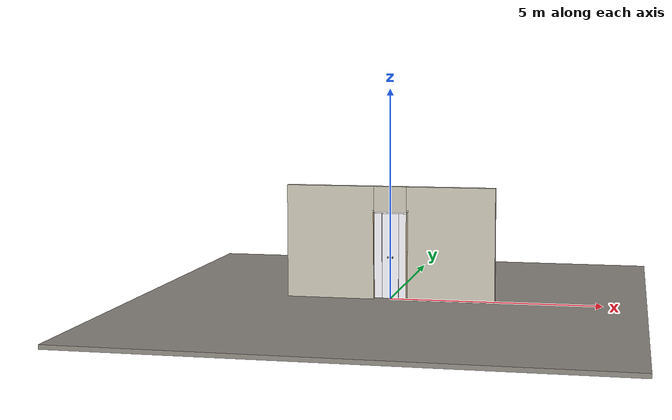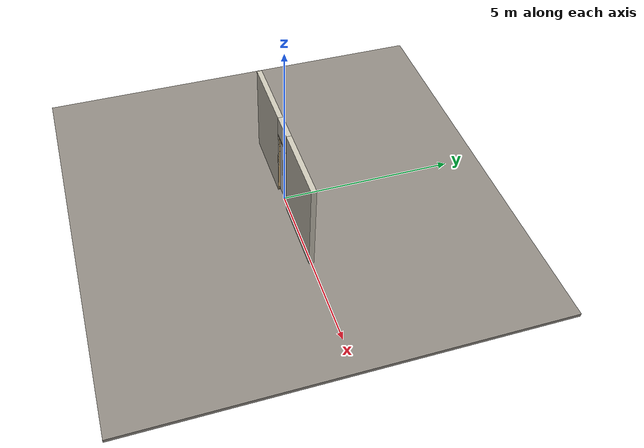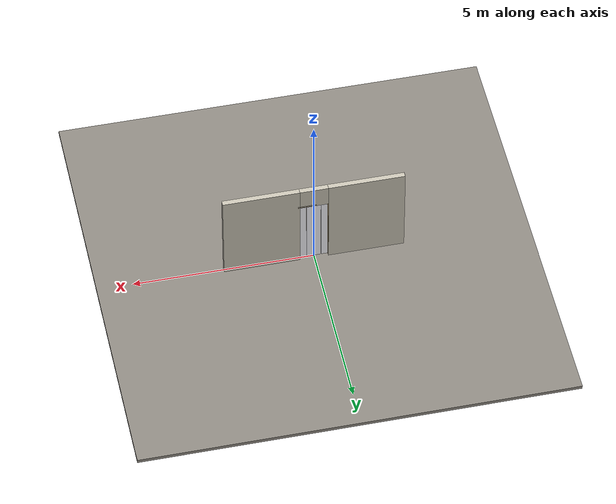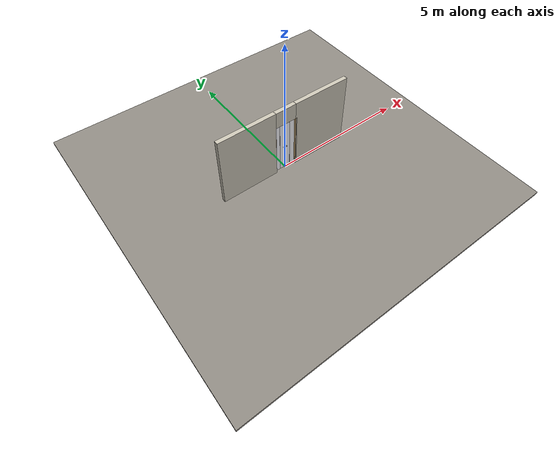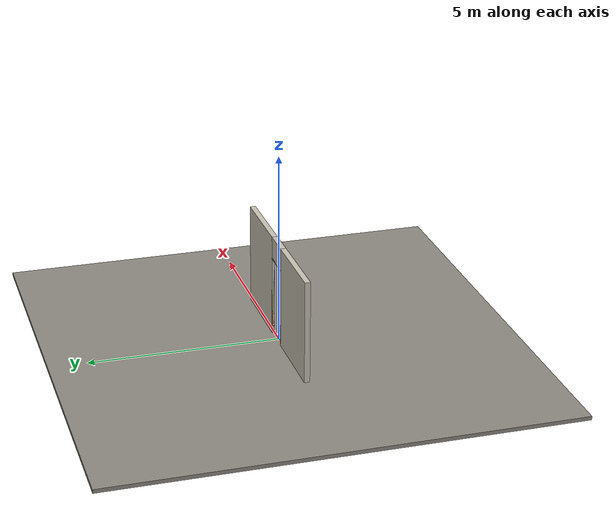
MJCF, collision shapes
<?xml version="1.0" ?>
<mujoco model="db0078_bifold_minimal">
  <compiler angle="radian" meshdir="../../hardware" texturedir="../../textures" autolimits="true" inertiafromgeom="false"/>
  <option timestep="0.002" integrator="implicitfast" cone="elliptic" impratio="10" noslip_iterations="3">
    <flag multiccd="enable"/>
  </option>
  <size memory="16M"/>
  <default>
    <geom condim="4" solref="0.005 1" solimp="0.95 0.99 0.001"/>
    <joint solreflimit="0.005 1" solimplimit="0.95 0.99 0.001"/>
    <tendon solreflimit="0.005 1"/>
    <equality solref="0.002 1"/>
  </default>
  <visual>
    <headlight ambient="0.4 0.4 0.4" diffuse="0.7 0.7 0.7" specular="0.2 0.2 0.2"/>
    <quality shadowsize="4096"/>
    <map znear="0.01" zfar="60"/>
  </visual>
  <asset>
    <mesh name="knob_13f7a2a65f" file="knob_13f7a2a65f.obj"/>
    <material name="mat_floor" rgba="0.55 0.53 0.5 1" specular="0.2" shininess="0.15" reflectance="0"/>
    <material name="mat_wall" rgba="0.78 0.76 0.7 1" specular="0.2" shininess="0.1" reflectance="0"/>
    <material name="mat_frame" rgba="0.82 0.7 0.5 1" specular="0.2" shininess="0.45" reflectance="0"/>
    <material name="mat_track" rgba="0.8 0.81 0.83 1" specular="0.8" shininess="0.6" reflectance="0.4"/>
    <material name="mat_hinge" rgba="0.65 0.66 0.68 1" specular="0.74" shininess="0.5" reflectance="0.36"/>
    <material name="mat_panel_0_0" rgba="0.95 0.95 0.97 1" specular="0.8" shininess="1" reflectance="0.4"/>
    <material name="mat_glass_leaf" rgba="0.95 0.95 0.97 1" specular="0.8" shininess="1" reflectance="0.4"/>
    <material name="mat_patch" rgba="0.75 0.76 0.77 1" specular="0.8" shininess="0.65" reflectance="0.4"/>
    <material name="mat_panel_0_1" rgba="0.95 0.95 0.97 1" specular="0.8" shininess="1" reflectance="0.4"/>
    <material name="mat_op_nickel_satin" rgba="0.72 0.7 0.66 1" specular="0.8" shininess="0.65" reflectance="0.4"/>
    <material name="mat_panel_1_0" rgba="0.95 0.95 0.97 1" specular="0.8" shininess="1" reflectance="0.4"/>
    <material name="mat_panel_1_1" rgba="0.95 0.95 0.97 1" specular="0.8" shininess="1" reflectance="0.4"/>
    <texture name="skybox" type="skybox" builtin="gradient" rgb1="0.6 0.7 0.85" rgb2="0.9 0.92 0.95" width="256" height="256"/>
  </asset>
  <worldbody>
    <light name="sun" pos="1.5 -2.5 4" dir="-0.3 0.5 -0.8" directional="true" diffuse="0.8 0.8 0.8" specular="0.3 0.3 0.3" castshadow="true"/>
    <light name="fill" pos="-1.5 2.5 3" dir="0.3 -0.5 -0.7" directional="true" diffuse="0.35 0.35 0.4" castshadow="false"/>
    <camera name="robot_view" pos="0 -2.581563 1.766338" xyaxes="1 0 0 0 0.26963 0.962964" fovy="52"/>
    <camera name="far_view" pos="0 2.581563 1.766338" xyaxes="-1 0 0 0 -0.26963 0.962964" fovy="52"/>
    <camera name="iso" pos="1.961988 -2.168513 2.179388" xyaxes="0.741536 0.670913 0 -0.242917 0.268487 0.932151" fovy="46"/>
    <camera name="detail_handle" pos="0.125 -0.833 1.28" xyaxes="0.97561 0.219512 0 -0.070934 0.315262 0.94635" fovy="38"/>
    <geom name="floor" type="box" size="6 6 0.05" pos="0 0 -0.05" material="mat_floor" group="0" contype="1" conaffinity="1" friction="0.8 0.005 0.0001" density="2400"/>
    <geom name="wall_left" type="box" size="1.055 0.0725 1.35" pos="-1.445 0 1.35" material="mat_wall" group="0" contype="1" conaffinity="1" friction="0.6 0.005 0.0001" density="800"/>
    <geom name="wall_right" type="box" size="1.055 0.0725 1.35" pos="1.445 0 1.35" material="mat_wall" group="0" contype="1" conaffinity="1" friction="0.6 0.005 0.0001" density="800"/>
    <geom name="wall_header" type="box" size="0.39 0.0725 0.3065" pos="0 0 2.3935" material="mat_wall" group="0" contype="1" conaffinity="1" friction="0.6 0.005 0.0001" density="800"/>
    <geom name="jamb_hinge" type="box" size="0.0095 0.0725 1.0435" pos="-0.3995 0 1.0435" material="mat_frame" group="0" contype="1" conaffinity="1" friction="0.6 0.005 0.0001" density="400"/>
    <geom name="jamb_strike" type="box" size="0.0095 0.0725 1.0435" pos="0.3995 0 1.0435" material="mat_frame" group="0" contype="1" conaffinity="1" friction="0.6 0.005 0.0001" density="400"/>
    <geom name="stud_strike" type="box" size="0.015 0.0725 1.0435" pos="0.424 0 1.0435" material="mat_wall" group="0" contype="1" conaffinity="1" friction="0.6 0.005 0.0001" density="500"/>
    <geom name="jamb_head" type="box" size="0.424 0.0725 0.0095" pos="0.015 0 2.0965" material="mat_frame" group="0" contype="1" conaffinity="1" friction="0.6 0.005 0.0001" density="400"/>
    <geom name="head_stud" type="box" size="0.424 0.0725 0.015" pos="0.015 0 2.121" material="mat_wall" group="0" contype="1" conaffinity="1" friction="0.6 0.005 0.0001" density="500"/>
    <site name="approach_point" pos="0 -1.5 0" quat="1 0 0 0" size="0.05" rgba="0.2 0.9 0.2 0.5" group="4"/>
    <site name="goal_point" pos="0 1.5 0" quat="1 0 0 0" size="0.05" rgba="0.2 0.9 0.2 0.5" group="4"/>
    <site name="door_plane_center" pos="0 0 1.0435" quat="1 0 0 0" size="0.02" rgba="0.2 0.9 0.2 0.5" group="4"/>
    <body name="panel_0_0" pos="-0.39 0 0">
      <inertial pos="0.0965 0 1.036" mass="5.501017" quat="-0.5 0.5 0.5 0.5" diaginertia="0.015368465 1.89283561 1.908171068"/>
      <joint name="panel_0_0_hinge" type="hinge" axis="0 0 -1" pos="0.035 0 0" limited="true" range="0 1.48353" damping="0.718724" frictionloss="2.195712" armature="0.02"/>
      <geom name="panel_0_0_glass" type="box" size="0.0915 0.003 1.016" pos="0.0965 0 1.036" material="mat_glass_leaf" group="0" contype="1" conaffinity="1" friction="0.4 0.005 0.0001" density="1"/>
      <body name="panel_0_1" pos="0.19 0 0">
        <inertial pos="0.144268 -0.021086 1.000566" mass="6.226383" quat="0.64361 -0.296971 0.641157 0.294096" diaginertia="0.00185092 0.035096014 0.035289714"/>
        <joint name="panel_0_1_hinge" type="hinge" axis="0 0 -1" pos="0 0.003 0" limited="true" range="-3.141593 0" damping="0.2" frictionloss="0.1" armature="0.005"/>
        <geom name="panel_0_1_glass" type="box" size="0.0965 0.003 1.016" pos="0.0985 0 1.036" material="mat_glass_leaf" group="0" contype="1" conaffinity="1" friction="0.4 0.005 0.0001" density="1"/>
        <geom name="panel_0_1_knob" type="mesh" mesh="knob_13f7a2a65f" pos="0.145 -0.003 1" quat="0.707107 0.707107 0 0" material="mat_op_nickel_satin" group="1" contype="0" conaffinity="0" density="3000"/>
        <geom name="panel_0_1_knob_col" type="sphere" size="0.016" pos="0.145 -0.033 1" material="mat_op_nickel_satin" group="0" contype="1" conaffinity="1" friction="0.6 0.005 0.0001" density="3000"/>
        <geom name="panel_0_1_knob_rose" type="cylinder" size="0.022 0.005" pos="0.145 -0.008 1" quat="0.707107 -0.707107 0 0" material="mat_op_nickel_satin" group="1" contype="0" conaffinity="0" density="3000"/>
        <site name="panel_0_1_grip" pos="0.145 -0.033 1" quat="1 0 0 0" size="0.012" rgba="0.2 0.9 0.2 0.5" group="4"/>
      </body>
    </body>
    <body name="panel_1_0" pos="0.39 0 0">
      <inertial pos="-0.0965 0 1.036" mass="5.501017" quat="-0.5 0.5 0.5 0.5" diaginertia="0.015368465 1.89283561 1.908171068"/>
      <joint name="panel_1_0_hinge" type="hinge" axis="0 0 1" pos="-0.035 0 0" limited="true" range="0 1.48353" damping="0.718724" frictionloss="2.195712" armature="0.02"/>
      <geom name="panel_1_0_glass" type="box" size="0.0915 0.003 1.016" pos="-0.0965 0 1.036" material="mat_glass_leaf" group="0" contype="1" conaffinity="1" friction="0.4 0.005 0.0001" density="1"/>
      <body name="panel_1_1" pos="-0.19 0 0">
        <inertial pos="-0.144268 -0.021086 1.000566" mass="6.226383" quat="0.296971 0.64361 -0.294096 0.641157" diaginertia="0.00185092 0.035096014 0.035289714"/>
        <joint name="panel_1_1_hinge" type="hinge" axis="0 0 1" pos="0 0.003 0" limited="true" range="-3.141593 0" damping="0.2" frictionloss="0.1" armature="0.005"/>
        <geom name="panel_1_1_glass" type="box" size="0.0965 0.003 1.016" pos="-0.0985 0 1.036" material="mat_glass_leaf" group="0" contype="1" conaffinity="1" friction="0.4 0.005 0.0001" density="1"/>
        <geom name="panel_1_1_knob" type="mesh" mesh="knob_13f7a2a65f" pos="-0.145 -0.003 1" quat="0 0 -0.707107 0.707107" material="mat_op_nickel_satin" group="1" contype="0" conaffinity="0" density="3000"/>
        <geom name="panel_1_1_knob_col" type="sphere" size="0.016" pos="-0.145 -0.033 1" material="mat_op_nickel_satin" group="0" contype="1" conaffinity="1" friction="0.6 0.005 0.0001" density="3000"/>
        <geom name="panel_1_1_knob_rose" type="cylinder" size="0.022 0.005" pos="-0.145 -0.008 1" quat="0.707107 -0.707107 0 0" material="mat_op_nickel_satin" group="1" contype="0" conaffinity="0" density="3000"/>
        <site name="panel_1_1_grip" pos="-0.145 -0.033 1" quat="1 0 0 0" size="0.012" rgba="0.2 0.9 0.2 0.5" group="4"/>
      </body>
    </body>
  </worldbody>
  <equality>
    <joint name="panel_0_1_couple" joint1="panel_0_1_hinge" joint2="panel_0_0_hinge" polycoef="0 -2 0 0 0" active="true"/>
    <joint name="panel_1_1_couple" joint1="panel_1_1_hinge" joint2="panel_1_0_hinge" polycoef="0 -2 0 0 0" active="true"/>
  </equality>
  <sensor>
    <jointpos name="panel_0_0_hinge_pos" joint="panel_0_0_hinge"/>
    <jointvel name="panel_0_0_hinge_vel" joint="panel_0_0_hinge"/>
    <jointpos name="panel_0_1_hinge_pos" joint="panel_0_1_hinge"/>
    <jointvel name="panel_0_1_hinge_vel" joint="panel_0_1_hinge"/>
    <jointpos name="panel_1_0_hinge_pos" joint="panel_1_0_hinge"/>
    <jointvel name="panel_1_0_hinge_vel" joint="panel_1_0_hinge"/>
    <jointpos name="panel_1_1_hinge_pos" joint="panel_1_1_hinge"/>
    <jointvel name="panel_1_1_hinge_vel" joint="panel_1_1_hinge"/>
  </sensor>
</mujoco>
